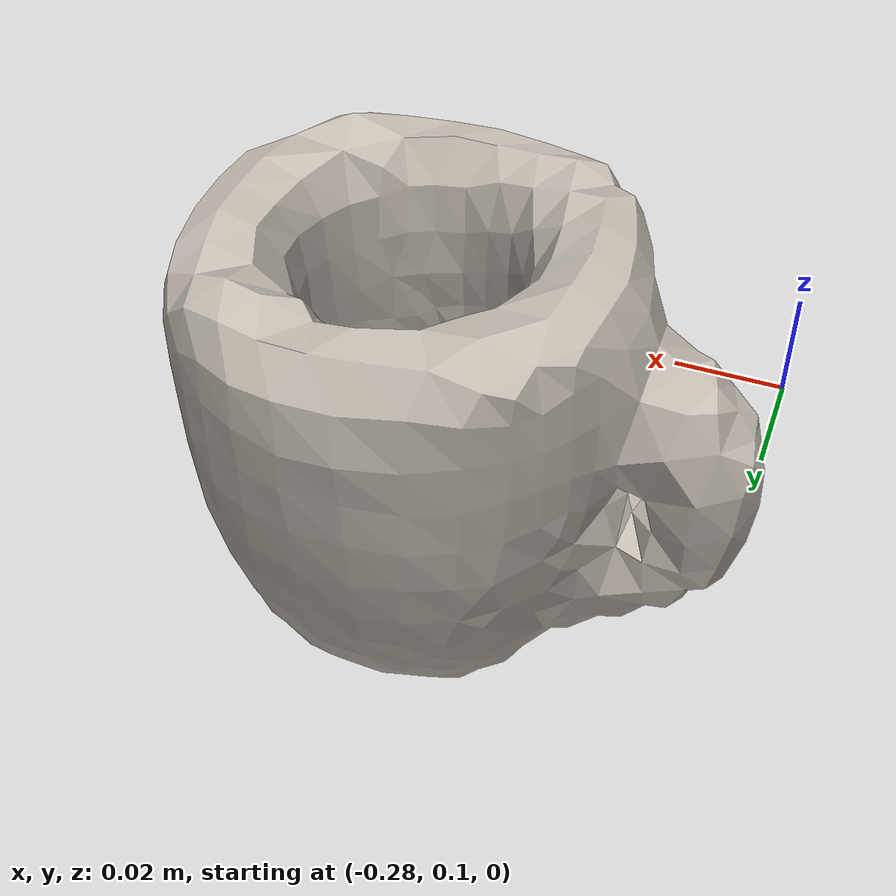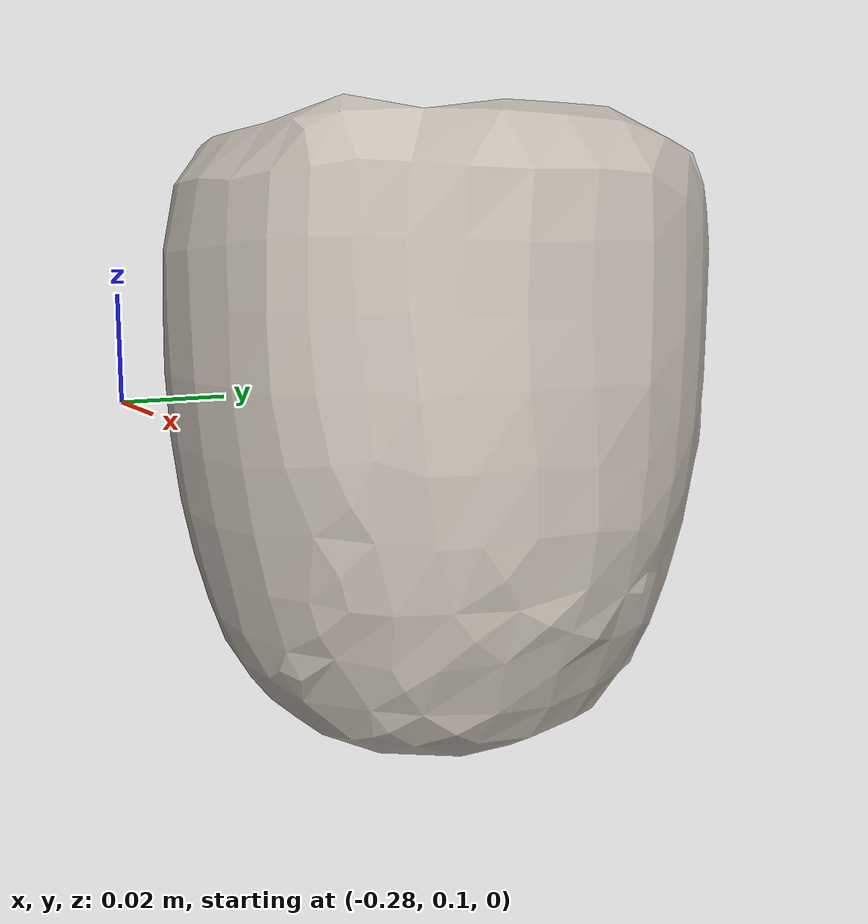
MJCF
<mujoco model="mug_Threshold_Porcelain_Coffee_Mug_All_Over_Bead_White_M">
  <asset>
    <mesh file="meshes/mug_Threshold_Porcelain_Coffee_Mug_All_Over_Bead_White_M.stl" name="mug_mesh" scale="0.666989058451136 0.666989058451136 0.666989058451136"/>
    <texture type="cube" file="/home/jbw/Projects/gc-reorientation/bin_env/assets/textures/ceramic.png" rgb1="1 1 1" name="tex-mug"/>
    <material name="mug" reflectance="0.5" texrepeat="3 3" texture="tex-mug"/>
  </asset>
  <worldbody>
    <body>
      <body name="object">
        <geom pos="-0.2236761970358208 0.1317477995787405 0.0009028705961677149" quat="1 0 0 0" mesh="mug_mesh" type="mesh" solref="0.02 1" density="2700" friction="1.0 1.0 1.0" material="mug" group="0" condim="4"/>
      </body>
      <site rgba="0 0 0 0" size="0.005" pos="0 0 -0.05" name="bottom_site"/>
      <site rgba="0 0 0 0" size="0.005" pos="0 0 0.03" name="top_site"/>
      <site rgba="0 0 0 0" size="0.005" pos="0.02 0.015 0" name="horizontal_radius_site"/>
    </body>
  </worldbody>
</mujoco>
